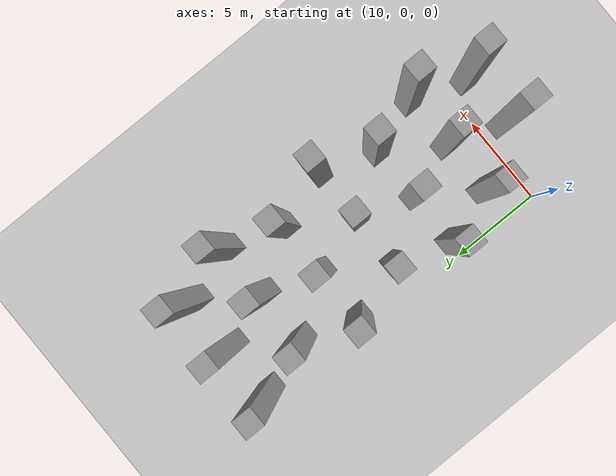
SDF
<sdf version="1.7">
 <world name="default">
  <model name="ground_plane">
   <static>1</static>
   <link name="link">
    <collision name="collision">
     <geometry><plane><normal>0 0 1</normal><size>100 100</size></plane></geometry>
     <surface>
      <contact><collide_bitmask>65535</collide_bitmask></contact>
      <friction><ode><mu>100</mu><mu2>50</mu2></ode></friction>
     </surface>
    </collision>
    <visual name="visual">
     <cast_shadows>0</cast_shadows>
     <geometry><plane><normal>0 0 1</normal><size>100 100</size></plane></geometry>
     <material>
      <script><uri>file://media/materials/scripts/gazebo.material</uri><name>Gazebo/Grey</name></script>
     </material>
    </visual>
   </link>
  </model>
  <model name="unit_box_static86">
   <link name="link">
    <inertial>
     <mass>1</mass>
     <inertia>
      <ixx>0.166667</ixx>
      <ixy>0</ixy>
      <ixz>0</ixz>
      <iyy>0.166667</iyy>
      <iyz>0</iyz>
      <izz>0.166667</izz>
     </inertia>
    </inertial>
    <visual name="visual">
     <geometry><box><size>1 1 8</size></box></geometry>
     <material>
      <script><name>Gazebo/Grey</name><uri>file://media/materials/scripts/gazebo.material</uri></script>
      <shader type="pixel"/>
     </material>
    </visual>
    <collision name="collision">
     <geometry><box><size>1 1 8</size></box></geometry>
     <surface>
      <friction>
       <ode><mu>1</mu><mu2>1</mu2><fdir1>0 0 0</fdir1><slip1>0</slip1><slip2>0</slip2></ode>
       <torsional>
        <coefficient>1</coefficient>
        <patch_radius>0</patch_radius>
        <surface_radius>0</surface_radius>
        <use_patch_radius>1</use_patch_radius>
        <ode><slip>0</slip></ode>
       </torsional>
      </friction>
      <bounce><restitution_coefficient>0</restitution_coefficient><threshold>1e+06</threshold></bounce>
      <contact>
       <collide_without_contact>0</collide_without_contact>
       <collide_without_contact_bitmask>1</collide_without_contact_bitmask>
       <collide_bitmask>1</collide_bitmask>
       <ode>
        <soft_cfm>0</soft_cfm>
        <soft_erp>0.2</soft_erp>
        <kp>1e+13</kp>
        <kd>1</kd>
        <max_vel>0.01</max_vel>
        <min_depth>0</min_depth>
       </ode>
       <bullet>
        <split_impulse>1</split_impulse>
        <split_impulse_penetration_threshold>-0.01</split_impulse_penetration_threshold>
        <soft_cfm>0</soft_cfm>
        <soft_erp>0.2</soft_erp>
        <kp>1e+13</kp>
        <kd>1</kd>
       </bullet>
      </contact>
     </surface>
    </collision>
   </link>
   <static>1</static>
   <pose>14 -1 4 0 -0 0</pose>
  </model>
  <model name="unit_box_static87">
   <link name="link">
    <inertial>
     <mass>1</mass>
     <inertia>
      <ixx>0.166667</ixx>
      <ixy>0</ixy>
      <ixz>0</ixz>
      <iyy>0.166667</iyy>
      <iyz>0</iyz>
      <izz>0.166667</izz>
     </inertia>
    </inertial>
    <visual name="visual">
     <geometry><box><size>1 1 8</size></box></geometry>
     <material>
      <script><name>Gazebo/Grey</name><uri>file://media/materials/scripts/gazebo.material</uri></script>
      <shader type="pixel"/>
     </material>
    </visual>
    <collision name="collision">
     <geometry><box><size>1 1 8</size></box></geometry>
     <surface>
      <friction>
       <ode><mu>1</mu><mu2>1</mu2><fdir1>0 0 0</fdir1><slip1>0</slip1><slip2>0</slip2></ode>
       <torsional>
        <coefficient>1</coefficient>
        <patch_radius>0</patch_radius>
        <surface_radius>0</surface_radius>
        <use_patch_radius>1</use_patch_radius>
        <ode><slip>0</slip></ode>
       </torsional>
      </friction>
      <bounce><restitution_coefficient>0</restitution_coefficient><threshold>1e+06</threshold></bounce>
      <contact>
       <collide_without_contact>0</collide_without_contact>
       <collide_without_contact_bitmask>1</collide_without_contact_bitmask>
       <collide_bitmask>1</collide_bitmask>
       <ode>
        <soft_cfm>0</soft_cfm>
        <soft_erp>0.2</soft_erp>
        <kp>1e+13</kp>
        <kd>1</kd>
        <max_vel>0.01</max_vel>
        <min_depth>0</min_depth>
       </ode>
       <bullet>
        <split_impulse>1</split_impulse>
        <split_impulse_penetration_threshold>-0.01</split_impulse_penetration_threshold>
        <soft_cfm>0</soft_cfm>
        <soft_erp>0.2</soft_erp>
        <kp>1e+13</kp>
        <kd>1</kd>
       </bullet>
      </contact>
     </surface>
    </collision>
   </link>
   <static>1</static>
   <pose>17 -1 4 0 -0 0</pose>
  </model>
  <model name="unit_box_static98">
   <link name="link">
    <inertial>
     <mass>1</mass>
     <inertia>
      <ixx>0.166667</ixx>
      <ixy>0</ixy>
      <ixz>0</ixz>
      <iyy>0.166667</iyy>
      <iyz>0</iyz>
      <izz>0.166667</izz>
     </inertia>
    </inertial>
    <visual name="visual">
     <geometry><box><size>1 1 8</size></box></geometry>
     <material>
      <script><name>Gazebo/Grey</name><uri>file://media/materials/scripts/gazebo.material</uri></script>
      <shader type="pixel"/>
     </material>
    </visual>
    <collision name="collision">
     <geometry><box><size>1 1 8</size></box></geometry>
     <surface>
      <friction>
       <ode><mu>1</mu><mu2>1</mu2><fdir1>0 0 0</fdir1><slip1>0</slip1><slip2>0</slip2></ode>
       <torsional>
        <coefficient>1</coefficient>
        <patch_radius>0</patch_radius>
        <surface_radius>0</surface_radius>
        <use_patch_radius>1</use_patch_radius>
        <ode><slip>0</slip></ode>
       </torsional>
      </friction>
      <bounce><restitution_coefficient>0</restitution_coefficient><threshold>1e+06</threshold></bounce>
      <contact>
       <collide_without_contact>0</collide_without_contact>
       <collide_without_contact_bitmask>1</collide_without_contact_bitmask>
       <collide_bitmask>1</collide_bitmask>
       <ode>
        <soft_cfm>0</soft_cfm>
        <soft_erp>0.2</soft_erp>
        <kp>1e+13</kp>
        <kd>1</kd>
        <max_vel>0.01</max_vel>
        <min_depth>0</min_depth>
       </ode>
       <bullet>
        <split_impulse>1</split_impulse>
        <split_impulse_penetration_threshold>-0.01</split_impulse_penetration_threshold>
        <soft_cfm>0</soft_cfm>
        <soft_erp>0.2</soft_erp>
        <kp>1e+13</kp>
        <kd>1</kd>
       </bullet>
      </contact>
     </surface>
    </collision>
   </link>
   <static>1</static>
   <pose>12 2 4 0 -0 0</pose>
  </model>
  <model name="unit_box_static99">
   <link name="link">
    <inertial>
     <mass>1</mass>
     <inertia>
      <ixx>0.166667</ixx>
      <ixy>0</ixy>
      <ixz>0</ixz>
      <iyy>0.166667</iyy>
      <iyz>0</iyz>
      <izz>0.166667</izz>
     </inertia>
    </inertial>
    <visual name="visual">
     <geometry><box><size>1 1 8</size></box></geometry>
     <material>
      <script><name>Gazebo/Grey</name><uri>file://media/materials/scripts/gazebo.material</uri></script>
      <shader type="pixel"/>
     </material>
    </visual>
    <collision name="collision">
     <geometry><box><size>1 1 8</size></box></geometry>
     <surface>
      <friction>
       <ode><mu>1</mu><mu2>1</mu2><fdir1>0 0 0</fdir1><slip1>0</slip1><slip2>0</slip2></ode>
       <torsional>
        <coefficient>1</coefficient>
        <patch_radius>0</patch_radius>
        <surface_radius>0</surface_radius>
        <use_patch_radius>1</use_patch_radius>
        <ode><slip>0</slip></ode>
       </torsional>
      </friction>
      <bounce><restitution_coefficient>0</restitution_coefficient><threshold>1e+06</threshold></bounce>
      <contact>
       <collide_without_contact>0</collide_without_contact>
       <collide_without_contact_bitmask>1</collide_without_contact_bitmask>
       <collide_bitmask>1</collide_bitmask>
       <ode>
        <soft_cfm>0</soft_cfm>
        <soft_erp>0.2</soft_erp>
        <kp>1e+13</kp>
        <kd>1</kd>
        <max_vel>0.01</max_vel>
        <min_depth>0</min_depth>
       </ode>
       <bullet>
        <split_impulse>1</split_impulse>
        <split_impulse_penetration_threshold>-0.01</split_impulse_penetration_threshold>
        <soft_cfm>0</soft_cfm>
        <soft_erp>0.2</soft_erp>
        <kp>1e+13</kp>
        <kd>1</kd>
       </bullet>
      </contact>
     </surface>
    </collision>
   </link>
   <static>1</static>
   <pose>15 2 4 0 -0 0</pose>
  </model>
  <model name="unit_box_static100">
   <link name="link">
    <inertial>
     <mass>1</mass>
     <inertia>
      <ixx>0.166667</ixx>
      <ixy>0</ixy>
      <ixz>0</ixz>
      <iyy>0.166667</iyy>
      <iyz>0</iyz>
      <izz>0.166667</izz>
     </inertia>
    </inertial>
    <visual name="visual">
     <geometry><box><size>1 1 8</size></box></geometry>
     <material>
      <script><name>Gazebo/Grey</name><uri>file://media/materials/scripts/gazebo.material</uri></script>
      <shader type="pixel"/>
     </material>
    </visual>
    <collision name="collision">
     <geometry><box><size>1 1 8</size></box></geometry>
     <surface>
      <friction>
       <ode><mu>1</mu><mu2>1</mu2><fdir1>0 0 0</fdir1><slip1>0</slip1><slip2>0</slip2></ode>
       <torsional>
        <coefficient>1</coefficient>
        <patch_radius>0</patch_radius>
        <surface_radius>0</surface_radius>
        <use_patch_radius>1</use_patch_radius>
        <ode><slip>0</slip></ode>
       </torsional>
      </friction>
      <bounce><restitution_coefficient>0</restitution_coefficient><threshold>1e+06</threshold></bounce>
      <contact>
       <collide_without_contact>0</collide_without_contact>
       <collide_without_contact_bitmask>1</collide_without_contact_bitmask>
       <collide_bitmask>1</collide_bitmask>
       <ode>
        <soft_cfm>0</soft_cfm>
        <soft_erp>0.2</soft_erp>
        <kp>1e+13</kp>
        <kd>1</kd>
        <max_vel>0.01</max_vel>
        <min_depth>0</min_depth>
       </ode>
       <bullet>
        <split_impulse>1</split_impulse>
        <split_impulse_penetration_threshold>-0.01</split_impulse_penetration_threshold>
        <soft_cfm>0</soft_cfm>
        <soft_erp>0.2</soft_erp>
        <kp>1e+13</kp>
        <kd>1</kd>
       </bullet>
      </contact>
     </surface>
    </collision>
   </link>
   <static>1</static>
   <pose>18 2 4 0 -0 0</pose>
  </model>
  <model name="unit_box_static110">
   <link name="link">
    <inertial>
     <mass>1</mass>
     <inertia>
      <ixx>0.166667</ixx>
      <ixy>0</ixy>
      <ixz>0</ixz>
      <iyy>0.166667</iyy>
      <iyz>0</iyz>
      <izz>0.166667</izz>
     </inertia>
    </inertial>
    <visual name="visual">
     <geometry><box><size>1 1 8</size></box></geometry>
     <material>
      <script><name>Gazebo/Grey</name><uri>file://media/materials/scripts/gazebo.material</uri></script>
      <shader type="pixel"/>
     </material>
    </visual>
    <collision name="collision">
     <geometry><box><size>1 1 8</size></box></geometry>
     <surface>
      <friction>
       <ode><mu>1</mu><mu2>1</mu2><fdir1>0 0 0</fdir1><slip1>0</slip1><slip2>0</slip2></ode>
       <torsional>
        <coefficient>1</coefficient>
        <patch_radius>0</patch_radius>
        <surface_radius>0</surface_radius>
        <use_patch_radius>1</use_patch_radius>
        <ode><slip>0</slip></ode>
       </torsional>
      </friction>
      <bounce><restitution_coefficient>0</restitution_coefficient><threshold>1e+06</threshold></bounce>
      <contact>
       <collide_without_contact>0</collide_without_contact>
       <collide_without_contact_bitmask>1</collide_without_contact_bitmask>
       <collide_bitmask>1</collide_bitmask>
       <ode>
        <soft_cfm>0</soft_cfm>
        <soft_erp>0.2</soft_erp>
        <kp>1e+13</kp>
        <kd>1</kd>
        <max_vel>0.01</max_vel>
        <min_depth>0</min_depth>
       </ode>
       <bullet>
        <split_impulse>1</split_impulse>
        <split_impulse_penetration_threshold>-0.01</split_impulse_penetration_threshold>
        <soft_cfm>0</soft_cfm>
        <soft_erp>0.2</soft_erp>
        <kp>1e+13</kp>
        <kd>1</kd>
       </bullet>
      </contact>
     </surface>
    </collision>
   </link>
   <static>1</static>
   <pose>11 5 4 0 -0 0</pose>
  </model>
  <model name="unit_box_static111">
   <link name="link">
    <inertial>
     <mass>1</mass>
     <inertia>
      <ixx>0.166667</ixx>
      <ixy>0</ixy>
      <ixz>0</ixz>
      <iyy>0.166667</iyy>
      <iyz>0</iyz>
      <izz>0.166667</izz>
     </inertia>
    </inertial>
    <visual name="visual">
     <geometry><box><size>1 1 8</size></box></geometry>
     <material>
      <script><name>Gazebo/Grey</name><uri>file://media/materials/scripts/gazebo.material</uri></script>
      <shader type="pixel"/>
     </material>
    </visual>
    <collision name="collision">
     <geometry><box><size>1 1 8</size></box></geometry>
     <surface>
      <friction>
       <ode><mu>1</mu><mu2>1</mu2><fdir1>0 0 0</fdir1><slip1>0</slip1><slip2>0</slip2></ode>
       <torsional>
        <coefficient>1</coefficient>
        <patch_radius>0</patch_radius>
        <surface_radius>0</surface_radius>
        <use_patch_radius>1</use_patch_radius>
        <ode><slip>0</slip></ode>
       </torsional>
      </friction>
      <bounce><restitution_coefficient>0</restitution_coefficient><threshold>1e+06</threshold></bounce>
      <contact>
       <collide_without_contact>0</collide_without_contact>
       <collide_without_contact_bitmask>1</collide_without_contact_bitmask>
       <collide_bitmask>1</collide_bitmask>
       <ode>
        <soft_cfm>0</soft_cfm>
        <soft_erp>0.2</soft_erp>
        <kp>1e+13</kp>
        <kd>1</kd>
        <max_vel>0.01</max_vel>
        <min_depth>0</min_depth>
       </ode>
       <bullet>
        <split_impulse>1</split_impulse>
        <split_impulse_penetration_threshold>-0.01</split_impulse_penetration_threshold>
        <soft_cfm>0</soft_cfm>
        <soft_erp>0.2</soft_erp>
        <kp>1e+13</kp>
        <kd>1</kd>
       </bullet>
      </contact>
     </surface>
    </collision>
   </link>
   <static>1</static>
   <pose>14 5 4 0 -0 0</pose>
  </model>
  <model name="unit_box_static112">
   <link name="link">
    <inertial>
     <mass>1</mass>
     <inertia>
      <ixx>0.166667</ixx>
      <ixy>0</ixy>
      <ixz>0</ixz>
      <iyy>0.166667</iyy>
      <iyz>0</iyz>
      <izz>0.166667</izz>
     </inertia>
    </inertial>
    <visual name="visual">
     <geometry><box><size>1 1 8</size></box></geometry>
     <material>
      <script><name>Gazebo/Grey</name><uri>file://media/materials/scripts/gazebo.material</uri></script>
      <shader type="pixel"/>
     </material>
    </visual>
    <collision name="collision">
     <geometry><box><size>1 1 8</size></box></geometry>
     <surface>
      <friction>
       <ode><mu>1</mu><mu2>1</mu2><fdir1>0 0 0</fdir1><slip1>0</slip1><slip2>0</slip2></ode>
       <torsional>
        <coefficient>1</coefficient>
        <patch_radius>0</patch_radius>
        <surface_radius>0</surface_radius>
        <use_patch_radius>1</use_patch_radius>
        <ode><slip>0</slip></ode>
       </torsional>
      </friction>
      <bounce><restitution_coefficient>0</restitution_coefficient><threshold>1e+06</threshold></bounce>
      <contact>
       <collide_without_contact>0</collide_without_contact>
       <collide_without_contact_bitmask>1</collide_without_contact_bitmask>
       <collide_bitmask>1</collide_bitmask>
       <ode>
        <soft_cfm>0</soft_cfm>
        <soft_erp>0.2</soft_erp>
        <kp>1e+13</kp>
        <kd>1</kd>
        <max_vel>0.01</max_vel>
        <min_depth>0</min_depth>
       </ode>
       <bullet>
        <split_impulse>1</split_impulse>
        <split_impulse_penetration_threshold>-0.01</split_impulse_penetration_threshold>
        <soft_cfm>0</soft_cfm>
        <soft_erp>0.2</soft_erp>
        <kp>1e+13</kp>
        <kd>1</kd>
       </bullet>
      </contact>
     </surface>
    </collision>
   </link>
   <static>1</static>
   <pose>17 5 4 0 -0 0</pose>
  </model>
  <model name="unit_box_static123">
   <link name="link">
    <inertial>
     <mass>1</mass>
     <inertia>
      <ixx>0.166667</ixx>
      <ixy>0</ixy>
      <ixz>0</ixz>
      <iyy>0.166667</iyy>
      <iyz>0</iyz>
      <izz>0.166667</izz>
     </inertia>
    </inertial>
    <visual name="visual">
     <geometry><box><size>1 1 8</size></box></geometry>
     <material>
      <script><name>Gazebo/Grey</name><uri>file://media/materials/scripts/gazebo.material</uri></script>
      <shader type="pixel"/>
     </material>
    </visual>
    <collision name="collision">
     <geometry><box><size>1 1 8</size></box></geometry>
     <surface>
      <friction>
       <ode><mu>1</mu><mu2>1</mu2><fdir1>0 0 0</fdir1><slip1>0</slip1><slip2>0</slip2></ode>
       <torsional>
        <coefficient>1</coefficient>
        <patch_radius>0</patch_radius>
        <surface_radius>0</surface_radius>
        <use_patch_radius>1</use_patch_radius>
        <ode><slip>0</slip></ode>
       </torsional>
      </friction>
      <bounce><restitution_coefficient>0</restitution_coefficient><threshold>1e+06</threshold></bounce>
      <contact>
       <collide_without_contact>0</collide_without_contact>
       <collide_without_contact_bitmask>1</collide_without_contact_bitmask>
       <collide_bitmask>1</collide_bitmask>
       <ode>
        <soft_cfm>0</soft_cfm>
        <soft_erp>0.2</soft_erp>
        <kp>1e+13</kp>
        <kd>1</kd>
        <max_vel>0.01</max_vel>
        <min_depth>0</min_depth>
       </ode>
       <bullet>
        <split_impulse>1</split_impulse>
        <split_impulse_penetration_threshold>-0.01</split_impulse_penetration_threshold>
        <soft_cfm>0</soft_cfm>
        <soft_erp>0.2</soft_erp>
        <kp>1e+13</kp>
        <kd>1</kd>
       </bullet>
      </contact>
     </surface>
    </collision>
   </link>
   <static>1</static>
   <pose>12 8 4 0 -0 0</pose>
  </model>
  <model name="unit_box_static124">
   <link name="link">
    <inertial>
     <mass>1</mass>
     <inertia>
      <ixx>0.166667</ixx>
      <ixy>0</ixy>
      <ixz>0</ixz>
      <iyy>0.166667</iyy>
      <iyz>0</iyz>
      <izz>0.166667</izz>
     </inertia>
    </inertial>
    <visual name="visual">
     <geometry><box><size>1 1 8</size></box></geometry>
     <material>
      <script><name>Gazebo/Grey</name><uri>file://media/materials/scripts/gazebo.material</uri></script>
      <shader type="pixel"/>
     </material>
    </visual>
    <collision name="collision">
     <geometry><box><size>1 1 8</size></box></geometry>
     <surface>
      <friction>
       <ode><mu>1</mu><mu2>1</mu2><fdir1>0 0 0</fdir1><slip1>0</slip1><slip2>0</slip2></ode>
       <torsional>
        <coefficient>1</coefficient>
        <patch_radius>0</patch_radius>
        <surface_radius>0</surface_radius>
        <use_patch_radius>1</use_patch_radius>
        <ode><slip>0</slip></ode>
       </torsional>
      </friction>
      <bounce><restitution_coefficient>0</restitution_coefficient><threshold>1e+06</threshold></bounce>
      <contact>
       <collide_without_contact>0</collide_without_contact>
       <collide_without_contact_bitmask>1</collide_without_contact_bitmask>
       <collide_bitmask>1</collide_bitmask>
       <ode>
        <soft_cfm>0</soft_cfm>
        <soft_erp>0.2</soft_erp>
        <kp>1e+13</kp>
        <kd>1</kd>
        <max_vel>0.01</max_vel>
        <min_depth>0</min_depth>
       </ode>
       <bullet>
        <split_impulse>1</split_impulse>
        <split_impulse_penetration_threshold>-0.01</split_impulse_penetration_threshold>
        <soft_cfm>0</soft_cfm>
        <soft_erp>0.2</soft_erp>
        <kp>1e+13</kp>
        <kd>1</kd>
       </bullet>
      </contact>
     </surface>
    </collision>
   </link>
   <static>1</static>
   <pose>15 8 4 0 -0 0</pose>
  </model>
  <model name="unit_box_static125">
   <link name="link">
    <inertial>
     <mass>1</mass>
     <inertia>
      <ixx>0.166667</ixx>
      <ixy>0</ixy>
      <ixz>0</ixz>
      <iyy>0.166667</iyy>
      <iyz>0</iyz>
      <izz>0.166667</izz>
     </inertia>
    </inertial>
    <visual name="visual">
     <geometry><box><size>1 1 8</size></box></geometry>
     <material>
      <script><name>Gazebo/Grey</name><uri>file://media/materials/scripts/gazebo.material</uri></script>
      <shader type="pixel"/>
     </material>
    </visual>
    <collision name="collision">
     <geometry><box><size>1 1 8</size></box></geometry>
     <surface>
      <friction>
       <ode><mu>1</mu><mu2>1</mu2><fdir1>0 0 0</fdir1><slip1>0</slip1><slip2>0</slip2></ode>
       <torsional>
        <coefficient>1</coefficient>
        <patch_radius>0</patch_radius>
        <surface_radius>0</surface_radius>
        <use_patch_radius>1</use_patch_radius>
        <ode><slip>0</slip></ode>
       </torsional>
      </friction>
      <bounce><restitution_coefficient>0</restitution_coefficient><threshold>1e+06</threshold></bounce>
      <contact>
       <collide_without_contact>0</collide_without_contact>
       <collide_without_contact_bitmask>1</collide_without_contact_bitmask>
       <collide_bitmask>1</collide_bitmask>
       <ode>
        <soft_cfm>0</soft_cfm>
        <soft_erp>0.2</soft_erp>
        <kp>1e+13</kp>
        <kd>1</kd>
        <max_vel>0.01</max_vel>
        <min_depth>0</min_depth>
       </ode>
       <bullet>
        <split_impulse>1</split_impulse>
        <split_impulse_penetration_threshold>-0.01</split_impulse_penetration_threshold>
        <soft_cfm>0</soft_cfm>
        <soft_erp>0.2</soft_erp>
        <kp>1e+13</kp>
        <kd>1</kd>
       </bullet>
      </contact>
     </surface>
    </collision>
   </link>
   <static>1</static>
   <pose>18 8 4 0 -0 0</pose>
  </model>
  <model name="unit_box_static135">
   <link name="link">
    <inertial>
     <mass>1</mass>
     <inertia>
      <ixx>0.166667</ixx>
      <ixy>0</ixy>
      <ixz>0</ixz>
      <iyy>0.166667</iyy>
      <iyz>0</iyz>
      <izz>0.166667</izz>
     </inertia>
    </inertial>
    <visual name="visual">
     <geometry><box><size>1 1 8</size></box></geometry>
     <material>
      <script><name>Gazebo/Grey</name><uri>file://media/materials/scripts/gazebo.material</uri></script>
      <shader type="pixel"/>
     </material>
    </visual>
    <collision name="collision">
     <geometry><box><size>1 1 8</size></box></geometry>
     <surface>
      <friction>
       <ode><mu>1</mu><mu2>1</mu2><fdir1>0 0 0</fdir1><slip1>0</slip1><slip2>0</slip2></ode>
       <torsional>
        <coefficient>1</coefficient>
        <patch_radius>0</patch_radius>
        <surface_radius>0</surface_radius>
        <use_patch_radius>1</use_patch_radius>
        <ode><slip>0</slip></ode>
       </torsional>
      </friction>
      <bounce><restitution_coefficient>0</restitution_coefficient><threshold>1e+06</threshold></bounce>
      <contact>
       <collide_without_contact>0</collide_without_contact>
       <collide_without_contact_bitmask>1</collide_without_contact_bitmask>
       <collide_bitmask>1</collide_bitmask>
       <ode>
        <soft_cfm>0</soft_cfm>
        <soft_erp>0.2</soft_erp>
        <kp>1e+13</kp>
        <kd>1</kd>
        <max_vel>0.01</max_vel>
        <min_depth>0</min_depth>
       </ode>
       <bullet>
        <split_impulse>1</split_impulse>
        <split_impulse_penetration_threshold>-0.01</split_impulse_penetration_threshold>
        <soft_cfm>0</soft_cfm>
        <soft_erp>0.2</soft_erp>
        <kp>1e+13</kp>
        <kd>1</kd>
       </bullet>
      </contact>
     </surface>
    </collision>
   </link>
   <static>1</static>
   <pose>11 11 4 0 -0 0</pose>
  </model>
  <model name="unit_box_static136">
   <link name="link">
    <inertial>
     <mass>1</mass>
     <inertia>
      <ixx>0.166667</ixx>
      <ixy>0</ixy>
      <ixz>0</ixz>
      <iyy>0.166667</iyy>
      <iyz>0</iyz>
      <izz>0.166667</izz>
     </inertia>
    </inertial>
    <visual name="visual">
     <geometry><box><size>1 1 8</size></box></geometry>
     <material>
      <script><name>Gazebo/Grey</name><uri>file://media/materials/scripts/gazebo.material</uri></script>
      <shader type="pixel"/>
     </material>
    </visual>
    <collision name="collision">
     <geometry><box><size>1 1 8</size></box></geometry>
     <surface>
      <friction>
       <ode><mu>1</mu><mu2>1</mu2><fdir1>0 0 0</fdir1><slip1>0</slip1><slip2>0</slip2></ode>
       <torsional>
        <coefficient>1</coefficient>
        <patch_radius>0</patch_radius>
        <surface_radius>0</surface_radius>
        <use_patch_radius>1</use_patch_radius>
        <ode><slip>0</slip></ode>
       </torsional>
      </friction>
      <bounce><restitution_coefficient>0</restitution_coefficient><threshold>1e+06</threshold></bounce>
      <contact>
       <collide_without_contact>0</collide_without_contact>
       <collide_without_contact_bitmask>1</collide_without_contact_bitmask>
       <collide_bitmask>1</collide_bitmask>
       <ode>
        <soft_cfm>0</soft_cfm>
        <soft_erp>0.2</soft_erp>
        <kp>1e+13</kp>
        <kd>1</kd>
        <max_vel>0.01</max_vel>
        <min_depth>0</min_depth>
       </ode>
       <bullet>
        <split_impulse>1</split_impulse>
        <split_impulse_penetration_threshold>-0.01</split_impulse_penetration_threshold>
        <soft_cfm>0</soft_cfm>
        <soft_erp>0.2</soft_erp>
        <kp>1e+13</kp>
        <kd>1</kd>
       </bullet>
      </contact>
     </surface>
    </collision>
   </link>
   <static>1</static>
   <pose>14 11 4 0 -0 0</pose>
  </model>
  <model name="unit_box_static137">
   <link name="link">
    <inertial>
     <mass>1</mass>
     <inertia>
      <ixx>0.166667</ixx>
      <ixy>0</ixy>
      <ixz>0</ixz>
      <iyy>0.166667</iyy>
      <iyz>0</iyz>
      <izz>0.166667</izz>
     </inertia>
    </inertial>
    <visual name="visual">
     <geometry><box><size>1 1 8</size></box></geometry>
     <material>
      <script><name>Gazebo/Grey</name><uri>file://media/materials/scripts/gazebo.material</uri></script>
      <shader type="pixel"/>
     </material>
    </visual>
    <collision name="collision">
     <geometry><box><size>1 1 8</size></box></geometry>
     <surface>
      <friction>
       <ode><mu>1</mu><mu2>1</mu2><fdir1>0 0 0</fdir1><slip1>0</slip1><slip2>0</slip2></ode>
       <torsional>
        <coefficient>1</coefficient>
        <patch_radius>0</patch_radius>
        <surface_radius>0</surface_radius>
        <use_patch_radius>1</use_patch_radius>
        <ode><slip>0</slip></ode>
       </torsional>
      </friction>
      <bounce><restitution_coefficient>0</restitution_coefficient><threshold>1e+06</threshold></bounce>
      <contact>
       <collide_without_contact>0</collide_without_contact>
       <collide_without_contact_bitmask>1</collide_without_contact_bitmask>
       <collide_bitmask>1</collide_bitmask>
       <ode>
        <soft_cfm>0</soft_cfm>
        <soft_erp>0.2</soft_erp>
        <kp>1e+13</kp>
        <kd>1</kd>
        <max_vel>0.01</max_vel>
        <min_depth>0</min_depth>
       </ode>
       <bullet>
        <split_impulse>1</split_impulse>
        <split_impulse_penetration_threshold>-0.01</split_impulse_penetration_threshold>
        <soft_cfm>0</soft_cfm>
        <soft_erp>0.2</soft_erp>
        <kp>1e+13</kp>
        <kd>1</kd>
       </bullet>
      </contact>
     </surface>
    </collision>
   </link>
   <static>1</static>
   <pose>17 11 4 0 -0 0</pose>
  </model>
  <model name="unit_box_static148">
   <link name="link">
    <inertial>
     <mass>1</mass>
     <inertia>
      <ixx>0.166667</ixx>
      <ixy>0</ixy>
      <ixz>0</ixz>
      <iyy>0.166667</iyy>
      <iyz>0</iyz>
      <izz>0.166667</izz>
     </inertia>
    </inertial>
    <visual name="visual">
     <geometry><box><size>1 1 8</size></box></geometry>
     <material>
      <script><name>Gazebo/Grey</name><uri>file://media/materials/scripts/gazebo.material</uri></script>
      <shader type="pixel"/>
     </material>
    </visual>
    <collision name="collision">
     <geometry><box><size>1 1 8</size></box></geometry>
     <surface>
      <friction>
       <ode><mu>1</mu><mu2>1</mu2><fdir1>0 0 0</fdir1><slip1>0</slip1><slip2>0</slip2></ode>
       <torsional>
        <coefficient>1</coefficient>
        <patch_radius>0</patch_radius>
        <surface_radius>0</surface_radius>
        <use_patch_radius>1</use_patch_radius>
        <ode><slip>0</slip></ode>
       </torsional>
      </friction>
      <bounce><restitution_coefficient>0</restitution_coefficient><threshold>1e+06</threshold></bounce>
      <contact>
       <collide_without_contact>0</collide_without_contact>
       <collide_without_contact_bitmask>1</collide_without_contact_bitmask>
       <collide_bitmask>1</collide_bitmask>
       <ode>
        <soft_cfm>0</soft_cfm>
        <soft_erp>0.2</soft_erp>
        <kp>1e+13</kp>
        <kd>1</kd>
        <max_vel>0.01</max_vel>
        <min_depth>0</min_depth>
       </ode>
       <bullet>
        <split_impulse>1</split_impulse>
        <split_impulse_penetration_threshold>-0.01</split_impulse_penetration_threshold>
        <soft_cfm>0</soft_cfm>
        <soft_erp>0.2</soft_erp>
        <kp>1e+13</kp>
        <kd>1</kd>
       </bullet>
      </contact>
     </surface>
    </collision>
   </link>
   <static>1</static>
   <pose>12 14 4 0 -0 0</pose>
  </model>
  <model name="unit_box_static149">
   <link name="link">
    <inertial>
     <mass>1</mass>
     <inertia>
      <ixx>0.166667</ixx>
      <ixy>0</ixy>
      <ixz>0</ixz>
      <iyy>0.166667</iyy>
      <iyz>0</iyz>
      <izz>0.166667</izz>
     </inertia>
    </inertial>
    <visual name="visual">
     <geometry><box><size>1 1 8</size></box></geometry>
     <material>
      <script><name>Gazebo/Grey</name><uri>file://media/materials/scripts/gazebo.material</uri></script>
      <shader type="pixel"/>
     </material>
    </visual>
    <collision name="collision">
     <geometry><box><size>1 1 8</size></box></geometry>
     <surface>
      <friction>
       <ode><mu>1</mu><mu2>1</mu2><fdir1>0 0 0</fdir1><slip1>0</slip1><slip2>0</slip2></ode>
       <torsional>
        <coefficient>1</coefficient>
        <patch_radius>0</patch_radius>
        <surface_radius>0</surface_radius>
        <use_patch_radius>1</use_patch_radius>
        <ode><slip>0</slip></ode>
       </torsional>
      </friction>
      <bounce><restitution_coefficient>0</restitution_coefficient><threshold>1e+06</threshold></bounce>
      <contact>
       <collide_without_contact>0</collide_without_contact>
       <collide_without_contact_bitmask>1</collide_without_contact_bitmask>
       <collide_bitmask>1</collide_bitmask>
       <ode>
        <soft_cfm>0</soft_cfm>
        <soft_erp>0.2</soft_erp>
        <kp>1e+13</kp>
        <kd>1</kd>
        <max_vel>0.01</max_vel>
        <min_depth>0</min_depth>
       </ode>
       <bullet>
        <split_impulse>1</split_impulse>
        <split_impulse_penetration_threshold>-0.01</split_impulse_penetration_threshold>
        <soft_cfm>0</soft_cfm>
        <soft_erp>0.2</soft_erp>
        <kp>1e+13</kp>
        <kd>1</kd>
       </bullet>
      </contact>
     </surface>
    </collision>
   </link>
   <static>1</static>
   <pose>15 14 4 0 -0 0</pose>
  </model>
  <model name="unit_box_static150">
   <link name="link">
    <inertial>
     <mass>1</mass>
     <inertia>
      <ixx>0.166667</ixx>
      <ixy>0</ixy>
      <ixz>0</ixz>
      <iyy>0.166667</iyy>
      <iyz>0</iyz>
      <izz>0.166667</izz>
     </inertia>
    </inertial>
    <visual name="visual">
     <geometry><box><size>1 1 8</size></box></geometry>
     <material>
      <script><name>Gazebo/Grey</name><uri>file://media/materials/scripts/gazebo.material</uri></script>
      <shader type="pixel"/>
     </material>
    </visual>
    <collision name="collision">
     <geometry><box><size>1 1 8</size></box></geometry>
     <surface>
      <friction>
       <ode><mu>1</mu><mu2>1</mu2><fdir1>0 0 0</fdir1><slip1>0</slip1><slip2>0</slip2></ode>
       <torsional>
        <coefficient>1</coefficient>
        <patch_radius>0</patch_radius>
        <surface_radius>0</surface_radius>
        <use_patch_radius>1</use_patch_radius>
        <ode><slip>0</slip></ode>
       </torsional>
      </friction>
      <bounce><restitution_coefficient>0</restitution_coefficient><threshold>1e+06</threshold></bounce>
      <contact>
       <collide_without_contact>0</collide_without_contact>
       <collide_without_contact_bitmask>1</collide_without_contact_bitmask>
       <collide_bitmask>1</collide_bitmask>
       <ode>
        <soft_cfm>0</soft_cfm>
        <soft_erp>0.2</soft_erp>
        <kp>1e+13</kp>
        <kd>1</kd>
        <max_vel>0.01</max_vel>
        <min_depth>0</min_depth>
       </ode>
       <bullet>
        <split_impulse>1</split_impulse>
        <split_impulse_penetration_threshold>-0.01</split_impulse_penetration_threshold>
        <soft_cfm>0</soft_cfm>
        <soft_erp>0.2</soft_erp>
        <kp>1e+13</kp>
        <kd>1</kd>
       </bullet>
      </contact>
     </surface>
    </collision>
   </link>
   <static>1</static>
   <pose>18 14 4 0 -0 0</pose>
  </model>
  <model name="unit_box_static160">
   <link name="link">
    <inertial>
     <mass>1</mass>
     <inertia>
      <ixx>0.166667</ixx>
      <ixy>0</ixy>
      <ixz>0</ixz>
      <iyy>0.166667</iyy>
      <iyz>0</iyz>
      <izz>0.166667</izz>
     </inertia>
    </inertial>
    <visual name="visual">
     <geometry><box><size>1 1 8</size></box></geometry>
     <material>
      <script><name>Gazebo/Grey</name><uri>file://media/materials/scripts/gazebo.material</uri></script>
      <shader type="pixel"/>
     </material>
    </visual>
    <collision name="collision">
     <geometry><box><size>1 1 8</size></box></geometry>
     <surface>
      <friction>
       <ode><mu>1</mu><mu2>1</mu2><fdir1>0 0 0</fdir1><slip1>0</slip1><slip2>0</slip2></ode>
       <torsional>
        <coefficient>1</coefficient>
        <patch_radius>0</patch_radius>
        <surface_radius>0</surface_radius>
        <use_patch_radius>1</use_patch_radius>
        <ode><slip>0</slip></ode>
       </torsional>
      </friction>
      <bounce><restitution_coefficient>0</restitution_coefficient><threshold>1e+06</threshold></bounce>
      <contact>
       <collide_without_contact>0</collide_without_contact>
       <collide_without_contact_bitmask>1</collide_without_contact_bitmask>
       <collide_bitmask>1</collide_bitmask>
       <ode>
        <soft_cfm>0</soft_cfm>
        <soft_erp>0.2</soft_erp>
        <kp>1e+13</kp>
        <kd>1</kd>
        <max_vel>0.01</max_vel>
        <min_depth>0</min_depth>
       </ode>
       <bullet>
        <split_impulse>1</split_impulse>
        <split_impulse_penetration_threshold>-0.01</split_impulse_penetration_threshold>
        <soft_cfm>0</soft_cfm>
        <soft_erp>0.2</soft_erp>
        <kp>1e+13</kp>
        <kd>1</kd>
       </bullet>
      </contact>
     </surface>
    </collision>
   </link>
   <static>1</static>
   <pose>11 17 4 0 -0 0</pose>
  </model>
  <model name="unit_box_static161">
   <link name="link">
    <inertial>
     <mass>1</mass>
     <inertia>
      <ixx>0.166667</ixx>
      <ixy>0</ixy>
      <ixz>0</ixz>
      <iyy>0.166667</iyy>
      <iyz>0</iyz>
      <izz>0.166667</izz>
     </inertia>
    </inertial>
    <visual name="visual">
     <geometry><box><size>1 1 8</size></box></geometry>
     <material>
      <script><name>Gazebo/Grey</name><uri>file://media/materials/scripts/gazebo.material</uri></script>
      <shader type="pixel"/>
     </material>
    </visual>
    <collision name="collision">
     <geometry><box><size>1 1 8</size></box></geometry>
     <surface>
      <friction>
       <ode><mu>1</mu><mu2>1</mu2><fdir1>0 0 0</fdir1><slip1>0</slip1><slip2>0</slip2></ode>
       <torsional>
        <coefficient>1</coefficient>
        <patch_radius>0</patch_radius>
        <surface_radius>0</surface_radius>
        <use_patch_radius>1</use_patch_radius>
        <ode><slip>0</slip></ode>
       </torsional>
      </friction>
      <bounce><restitution_coefficient>0</restitution_coefficient><threshold>1e+06</threshold></bounce>
      <contact>
       <collide_without_contact>0</collide_without_contact>
       <collide_without_contact_bitmask>1</collide_without_contact_bitmask>
       <collide_bitmask>1</collide_bitmask>
       <ode>
        <soft_cfm>0</soft_cfm>
        <soft_erp>0.2</soft_erp>
        <kp>1e+13</kp>
        <kd>1</kd>
        <max_vel>0.01</max_vel>
        <min_depth>0</min_depth>
       </ode>
       <bullet>
        <split_impulse>1</split_impulse>
        <split_impulse_penetration_threshold>-0.01</split_impulse_penetration_threshold>
        <soft_cfm>0</soft_cfm>
        <soft_erp>0.2</soft_erp>
        <kp>1e+13</kp>
        <kd>1</kd>
       </bullet>
      </contact>
     </surface>
    </collision>
   </link>
   <static>1</static>
   <pose>14 17 4 0 -0 0</pose>
  </model>
  <model name="unit_box_static162">
   <link name="link">
    <inertial>
     <mass>1</mass>
     <inertia>
      <ixx>0.166667</ixx>
      <ixy>0</ixy>
      <ixz>0</ixz>
      <iyy>0.166667</iyy>
      <iyz>0</iyz>
      <izz>0.166667</izz>
     </inertia>
    </inertial>
    <visual name="visual">
     <geometry><box><size>1 1 8</size></box></geometry>
     <material>
      <script><name>Gazebo/Grey</name><uri>file://media/materials/scripts/gazebo.material</uri></script>
      <shader type="pixel"/>
     </material>
    </visual>
    <collision name="collision">
     <geometry><box><size>1 1 8</size></box></geometry>
     <surface>
      <friction>
       <ode><mu>1</mu><mu2>1</mu2><fdir1>0 0 0</fdir1><slip1>0</slip1><slip2>0</slip2></ode>
       <torsional>
        <coefficient>1</coefficient>
        <patch_radius>0</patch_radius>
        <surface_radius>0</surface_radius>
        <use_patch_radius>1</use_patch_radius>
        <ode><slip>0</slip></ode>
       </torsional>
      </friction>
      <bounce><restitution_coefficient>0</restitution_coefficient><threshold>1e+06</threshold></bounce>
      <contact>
       <collide_without_contact>0</collide_without_contact>
       <collide_without_contact_bitmask>1</collide_without_contact_bitmask>
       <collide_bitmask>1</collide_bitmask>
       <ode>
        <soft_cfm>0</soft_cfm>
        <soft_erp>0.2</soft_erp>
        <kp>1e+13</kp>
        <kd>1</kd>
        <max_vel>0.01</max_vel>
        <min_depth>0</min_depth>
       </ode>
       <bullet>
        <split_impulse>1</split_impulse>
        <split_impulse_penetration_threshold>-0.01</split_impulse_penetration_threshold>
        <soft_cfm>0</soft_cfm>
        <soft_erp>0.2</soft_erp>
        <kp>1e+13</kp>
        <kd>1</kd>
       </bullet>
      </contact>
     </surface>
    </collision>
   </link>
   <static>1</static>
   <pose>17 17 4 0 -0 0</pose>
  </model>
 </world>
</sdf>
